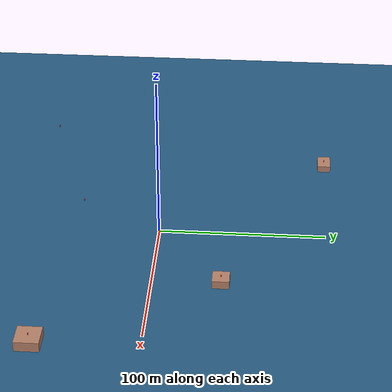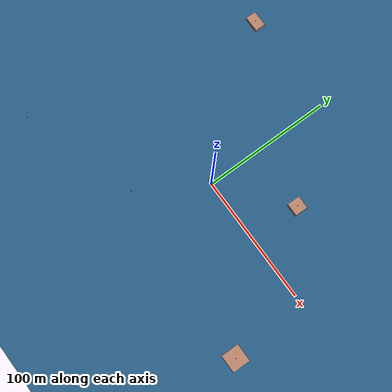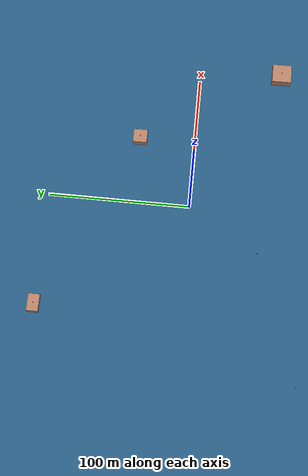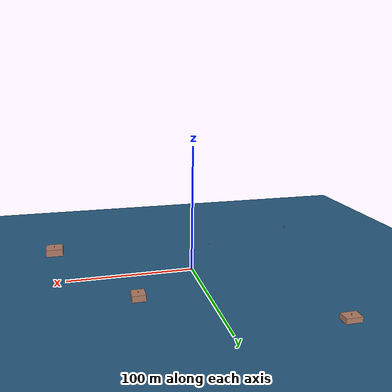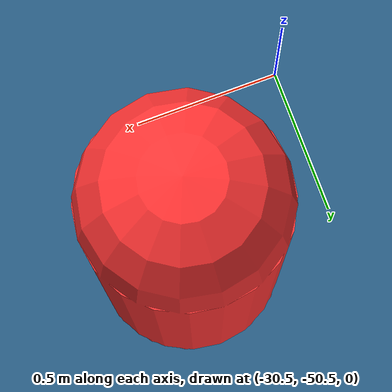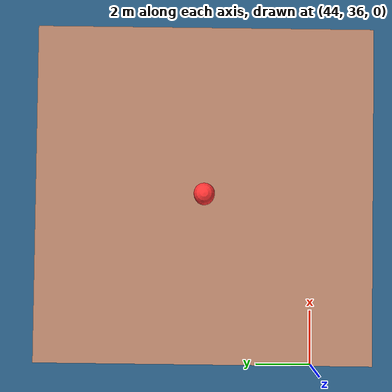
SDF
<?xml version="1.0" ?>
<sdf version="1.9">
  <world name="rescueswarm_flood_zone_world">
    <physics name="1ms" type="ignored">
      <max_step_size>0.004</max_step_size>
      <real_time_factor>1.0</real_time_factor>
    </physics>

    <plugin
      filename="gz-sim-physics-system"
      name="gz::sim::systems::Physics">
    </plugin>
    <plugin
      filename="gz-sim-user-commands-system"
      name="gz::sim::systems::UserCommands">
    </plugin>
    <plugin
      filename="gz-sim-scene-broadcaster-system"
      name="gz::sim::systems::SceneBroadcaster">
    </plugin>
    <plugin
      filename="gz-sim-sensors-system"
      name="gz::sim::systems::Sensors">
      <render_engine>ogre2</render_engine>
    </plugin>
    <plugin
      filename="gz-sim-navsat-system"
      name="gz::sim::systems::NavSat">
    </plugin>
    <plugin
      filename="gz-sim-imu-system"
      name="gz::sim::systems::Imu">
    </plugin>

    <!-- Sun Light -->
    <light type="directional" name="sun">
      <cast_shadows>true</cast_shadows>
      <pose>0 0 100 0 0 0</pose>
      <diffuse>0.9 0.9 0.8 1</diffuse>
      <specular>0.3 0.3 0.3 1</specular>
      <direction>-0.5 0.2 -0.8</direction>
    </light>

    <!-- 10-Hectare Flood Ground Plane (316m x 316m) -->
    <model name="flood_ground">
      <static>true</static>
      <link name="link">
        <collision name="col"><geometry><plane><normal>0 0 1</normal><size>320 320</size></plane></geometry></collision>
        <visual name="vis"><geometry><plane><normal>0 0 1</normal><size>320 320</size></plane></geometry>
          <material><ambient>0.1 0.3 0.4 1</ambient><diffuse>0.15 0.35 0.5 1</diffuse></material>
        </visual>
      </link>
    </model>

    <!-- Simulated Houses / Dry Patches in Flood Zone -->
    <model name="house_1">
      <static>true</static>
      <pose>50 40 2.5 0 0 0</pose>
      <link name="link">
        <collision name="col"><geometry><box><size>10 10 5</size></box></geometry></collision>
        <visual name="vis"><geometry><box><size>10 10 5</size></box></geometry>
          <material><ambient>0.6 0.4 0.3 1</ambient><diffuse>0.7 0.5 0.4 1</diffuse></material>
        </visual>
      </link>
    </model>

    <model name="house_2">
      <static>true</static>
      <pose>-80 100 2.0 0 0 0</pose>
      <link name="link">
        <collision name="col"><geometry><box><size>12 8 4</size></box></geometry></collision>
        <visual name="vis"><geometry><box><size>12 8 4</size></box></geometry>
          <material><ambient>0.6 0.4 0.3 1</ambient><diffuse>0.7 0.5 0.4 1</diffuse></material>
        </visual>
      </link>
    </model>

    <model name="house_3">
      <static>true</static>
      <pose>110 -60 3.0 0 0 0</pose>
      <link name="link">
        <collision name="col"><geometry><box><size>14 14 6</size></box></geometry></collision>
        <visual name="vis"><geometry><box><size>14 14 6</size></box></geometry>
          <material><ambient>0.6 0.4 0.3 1</ambient><diffuse>0.7 0.5 0.4 1</diffuse></material>
        </visual>
      </link>
    </model>

    <!-- Stranded Survivors (10 locations across 10-ha area) -->
    <!-- Survivor 1 (on roof of house 1) -->
    <model name="survivor_outdoor_1">
      <static>true</static>
      <pose>50 40 5.4 0 0 0</pose>
      <link name="link">
        <collision name="col"><geometry><capsule><radius>0.3</radius><length>1.0</length></capsule></geometry></collision>
        <visual name="vis"><geometry><capsule><radius>0.3</radius><length>1.0</length></capsule></geometry>
          <material><ambient>0.9 0.1 0.1 1</ambient><diffuse>1.0 0.2 0.2 1</diffuse></material>
        </visual>
      </link>
    </model>

    <!-- Survivor 2 (on roof of house 2) -->
    <model name="survivor_outdoor_2">
      <static>true</static>
      <pose>-80 100 4.4 0 0 0</pose>
      <link name="link">
        <collision name="col"><geometry><capsule><radius>0.3</radius><length>1.0</length></capsule></geometry></collision>
        <visual name="vis"><geometry><capsule><radius>0.3</radius><length>1.0</length></capsule></geometry>
          <material><ambient>0.9 0.1 0.1 1</ambient><diffuse>1.0 0.2 0.2 1</diffuse></material>
        </visual>
      </link>
    </model>

    <!-- Survivor 3 (on dry patch) -->
    <model name="survivor_outdoor_3">
      <static>true</static>
      <pose>-30 -50 0.5 0 0 0</pose>
      <link name="link">
        <collision name="col"><geometry><capsule><radius>0.3</radius><length>1.0</length></capsule></geometry></collision>
        <visual name="vis"><geometry><capsule><radius>0.3</radius><length>1.0</length></capsule></geometry>
          <material><ambient>0.9 0.1 0.1 1</ambient><diffuse>1.0 0.2 0.2 1</diffuse></material>
        </visual>
      </link>
    </model>

    <!-- Survivor 4 (roof of house 3) -->
    <model name="survivor_outdoor_4">
      <static>true</static>
      <pose>110 -60 6.4 0 0 0</pose>
      <link name="link">
        <collision name="col"><geometry><capsule><radius>0.3</radius><length>1.0</length></capsule></geometry></collision>
        <visual name="vis"><geometry><capsule><radius>0.3</radius><length>1.0</length></capsule></geometry>
          <material><ambient>0.9 0.1 0.1 1</ambient><diffuse>1.0 0.2 0.2 1</diffuse></material>
        </visual>
      </link>
    </model>

    <!-- Survivor 5 -->
    <model name="survivor_outdoor_5">
      <static>true</static>
      <pose>-120 -80 0.5 0 0 0</pose>
      <link name="link">
        <collision name="col"><geometry><capsule><radius>0.3</radius><length>1.0</length></capsule></geometry></collision>
        <visual name="vis"><geometry><capsule><radius>0.3</radius><length>1.0</length></capsule></geometry>
          <material><ambient>0.9 0.1 0.1 1</ambient><diffuse>1.0 0.2 0.2 1</diffuse></material>
        </visual>
      </link>
    </model>

  </world>
</sdf>
